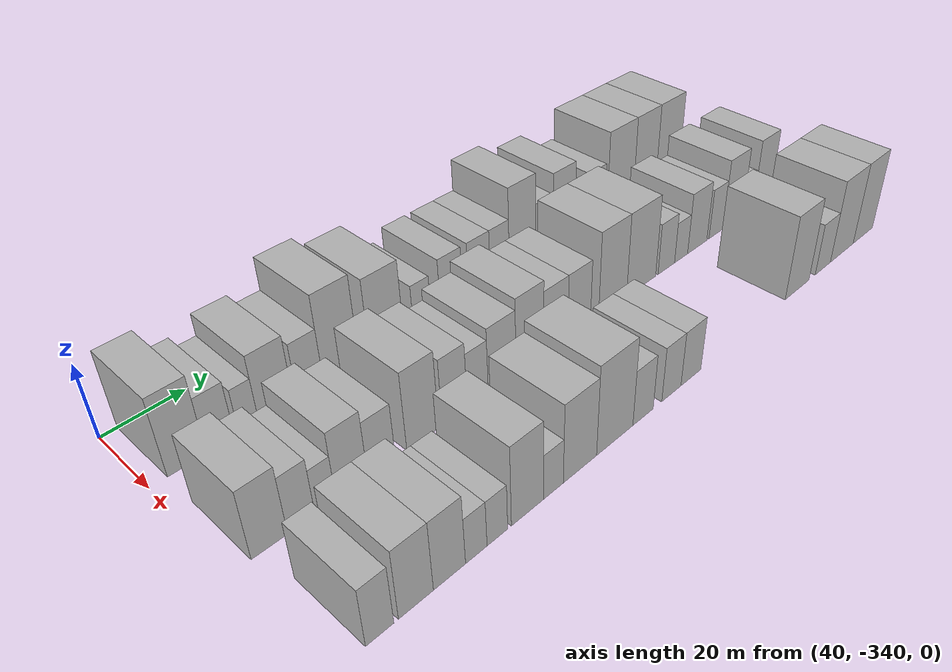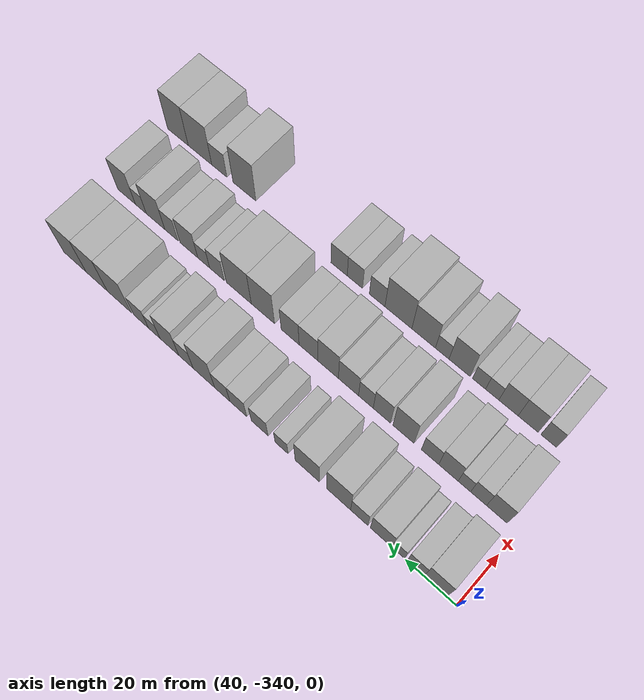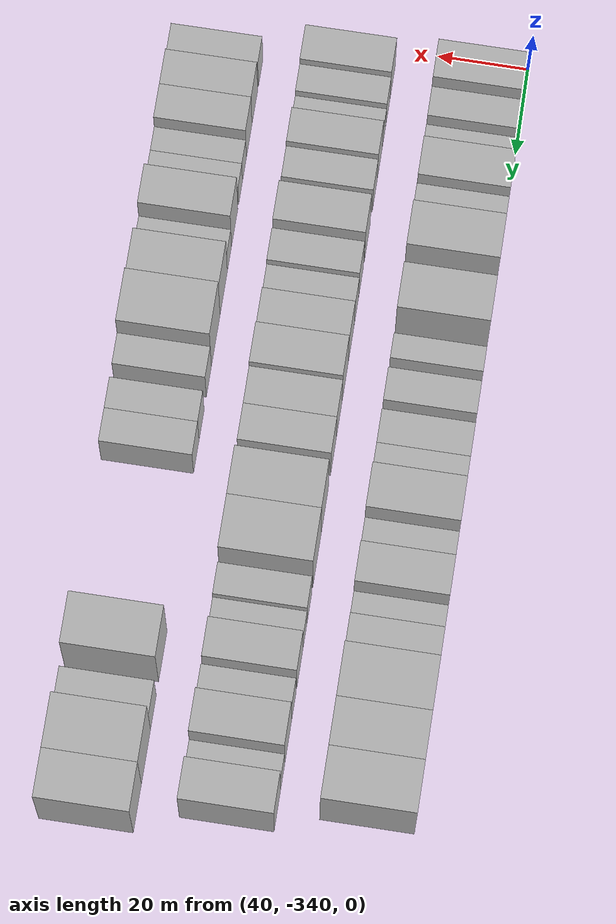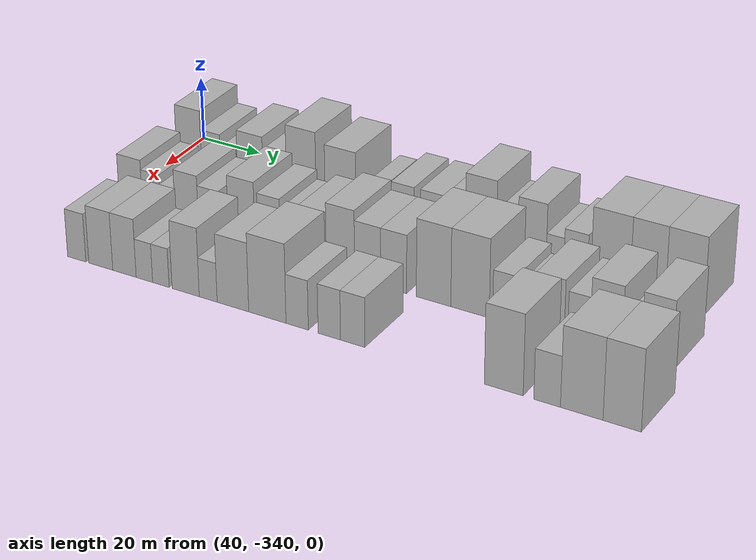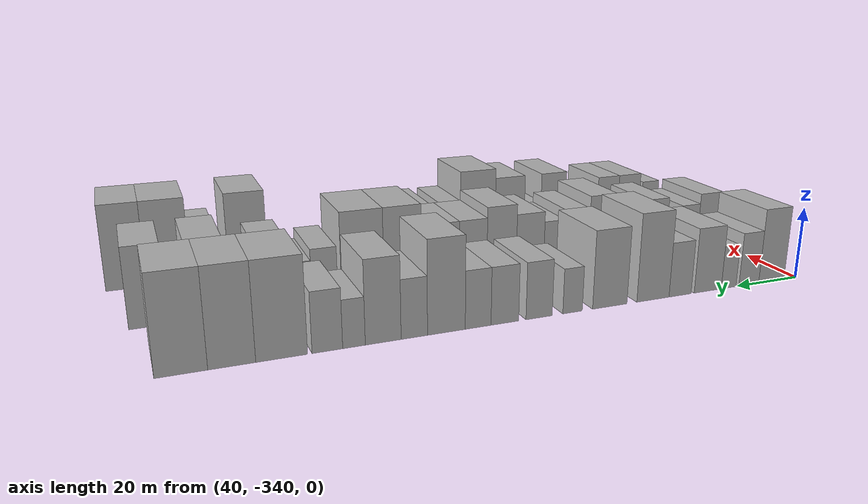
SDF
<sdf version="1.6">
 <world name="default">
  <model name="building_1">
   <static>1</static>
   <pose>50.0000 -331.6400 0 0.000000 0.000000 0.000000</pose>
   <link name="link">
    <pose>0 0 10.50 0 0 0</pose>
    <collision name="collision"><geometry><box><size>20.0000 8.7200 21.0000</size></box></geometry></collision>
    <visual name="visual">
     <cast_shadows>0</cast_shadows>
     <geometry><box><size>20.0000 8.7200 21.0000</size></box></geometry>
     <material>
      <script>
       <uri>model://HANNAS_wall/materials/scripts</uri>
       <uri>model://HANNAS_wall/materials/textures</uri>
       <name>vrc/HANNAS_wall</name>
      </script>
     </material>
    </visual>
   </link>
  </model>
  <model name="building_2">
   <static>1</static>
   <pose>50.0000 -323.9423 0 0.000000 0.000000 0.000000</pose>
   <link name="link">
    <pose>0 0 7.50 0 0 0</pose>
    <collision name="collision"><geometry><box><size>20.0000 6.6754 15.0000</size></box></geometry></collision>
    <visual name="visual">
     <cast_shadows>0</cast_shadows>
     <geometry><box><size>20.0000 6.6754 15.0000</size></box></geometry>
     <material>
      <script>
       <uri>model://HANNAS_wall/materials/scripts</uri>
       <uri>model://HANNAS_wall/materials/textures</uri>
       <name>vrc/HANNAS_wall</name>
      </script>
     </material>
    </visual>
   </link>
  </model>
  <model name="building_3">
   <static>1</static>
   <pose>50.0000 -317.1755 0 0.000000 0.000000 0.000000</pose>
   <link name="link">
    <pose>0 0 6.00 0 0 0</pose>
    <collision name="collision"><geometry><box><size>20.0000 4.8581 12.0000</size></box></geometry></collision>
    <visual name="visual">
     <cast_shadows>0</cast_shadows>
     <geometry><box><size>20.0000 4.8581 12.0000</size></box></geometry>
     <material>
      <script>
       <uri>model://HANNAS_wall/materials/scripts</uri>
       <uri>model://HANNAS_wall/materials/textures</uri>
       <name>vrc/HANNAS_wall</name>
      </script>
     </material>
    </visual>
   </link>
  </model>
  <model name="building_4">
   <static>1</static>
   <pose>50.0000 -310.3629 0 0.000000 0.000000 0.000000</pose>
   <link name="link">
    <pose>0 0 9.00 0 0 0</pose>
    <collision name="collision"><geometry><box><size>20.0000 8.7672 18.0000</size></box></geometry></collision>
    <visual name="visual">
     <cast_shadows>0</cast_shadows>
     <geometry><box><size>20.0000 8.7672 18.0000</size></box></geometry>
     <material>
      <script>
       <uri>model://HANNAS_wall/materials/scripts</uri>
       <uri>model://HANNAS_wall/materials/textures</uri>
       <name>vrc/HANNAS_wall</name>
      </script>
     </material>
    </visual>
   </link>
  </model>
  <model name="building_5">
   <static>1</static>
   <pose>50.0000 -301.4935 0 0.000000 0.000000 0.000000</pose>
   <link name="link">
    <pose>0 0 7.50 0 0 0</pose>
    <collision name="collision"><geometry><box><size>20.0000 6.9716 15.0000</size></box></geometry></collision>
    <visual name="visual">
     <cast_shadows>0</cast_shadows>
     <geometry><box><size>20.0000 6.9716 15.0000</size></box></geometry>
     <material>
      <script>
       <uri>model://HANNAS_wall/materials/scripts</uri>
       <uri>model://HANNAS_wall/materials/textures</uri>
       <name>vrc/HANNAS_wall</name>
      </script>
     </material>
    </visual>
   </link>
  </model>
  <model name="building_6">
   <static>1</static>
   <pose>50.0000 -293.0491 0 0.000000 0.000000 0.000000</pose>
   <link name="link">
    <pose>0 0 12.00 0 0 0</pose>
    <collision name="collision"><geometry><box><size>20.0000 9.9170 24.0000</size></box></geometry></collision>
    <visual name="visual">
     <cast_shadows>0</cast_shadows>
     <geometry><box><size>20.0000 9.9170 24.0000</size></box></geometry>
     <material>
      <script>
       <uri>model://HANNAS_wall/materials/scripts</uri>
       <uri>model://HANNAS_wall/materials/textures</uri>
       <name>vrc/HANNAS_wall</name>
      </script>
     </material>
    </visual>
   </link>
  </model>
  <model name="building_7">
   <static>1</static>
   <pose>50.0000 -280.0020 0 0.000000 0.000000 0.000000</pose>
   <link name="link">
    <pose>0 0 10.50 0 0 0</pose>
    <collision name="collision"><geometry><box><size>20.0000 10.1773 21.0000</size></box></geometry></collision>
    <visual name="visual">
     <cast_shadows>0</cast_shadows>
     <geometry><box><size>20.0000 10.1773 21.0000</size></box></geometry>
     <material>
      <script>
       <uri>model://HANNAS_wall/materials/scripts</uri>
       <uri>model://HANNAS_wall/materials/textures</uri>
       <name>vrc/HANNAS_wall</name>
      </script>
     </material>
    </visual>
   </link>
  </model>
  <model name="building_8">
   <static>1</static>
   <pose>50.0000 -269.1246 0 0.000000 0.000000 0.000000</pose>
   <link name="link">
    <pose>0 0 6.00 0 0 0</pose>
    <collision name="collision"><geometry><box><size>20.0000 5.5774 12.0000</size></box></geometry></collision>
    <visual name="visual">
     <cast_shadows>0</cast_shadows>
     <geometry><box><size>20.0000 5.5774 12.0000</size></box></geometry>
     <material>
      <script>
       <uri>model://HANNAS_wall/materials/scripts</uri>
       <uri>model://HANNAS_wall/materials/textures</uri>
       <name>vrc/HANNAS_wall</name>
      </script>
     </material>
    </visual>
   </link>
  </model>
  <model name="building_9">
   <static>1</static>
   <pose>50.0000 -259.6852 0 0.000000 0.000000 0.000000</pose>
   <link name="link">
    <pose>0 0 7.50 0 0 0</pose>
    <collision name="collision"><geometry><box><size>20.0000 7.3014 15.0000</size></box></geometry></collision>
    <visual name="visual">
     <cast_shadows>0</cast_shadows>
     <geometry><box><size>20.0000 7.3014 15.0000</size></box></geometry>
     <material>
      <script>
       <uri>model://HANNAS_wall/materials/scripts</uri>
       <uri>model://HANNAS_wall/materials/textures</uri>
       <name>vrc/HANNAS_wall</name>
      </script>
     </material>
    </visual>
   </link>
  </model>
  <model name="building_10">
   <static>1</static>
   <pose>50.0000 -250.3015 0 0.000000 0.000000 0.000000</pose>
   <link name="link">
    <pose>0 0 7.50 0 0 0</pose>
    <collision name="collision"><geometry><box><size>20.0000 7.4660 15.0000</size></box></geometry></collision>
    <visual name="visual">
     <cast_shadows>0</cast_shadows>
     <geometry><box><size>20.0000 7.4660 15.0000</size></box></geometry>
     <material>
      <script>
       <uri>model://HANNAS_wall/materials/scripts</uri>
       <uri>model://HANNAS_wall/materials/textures</uri>
       <name>vrc/HANNAS_wall</name>
      </script>
     </material>
    </visual>
   </link>
  </model>
  <model name="building_11">
   <static>1</static>
   <pose>50.0000 -243.1698 0 0.000000 0.000000 0.000000</pose>
   <link name="link">
    <pose>0 0 7.50 0 0 0</pose>
    <collision name="collision"><geometry><box><size>20.0000 6.7973 15.0000</size></box></geometry></collision>
    <visual name="visual">
     <cast_shadows>0</cast_shadows>
     <geometry><box><size>20.0000 6.7973 15.0000</size></box></geometry>
     <material>
      <script>
       <uri>model://HANNAS_wall/materials/scripts</uri>
       <uri>model://HANNAS_wall/materials/textures</uri>
       <name>vrc/HANNAS_wall</name>
      </script>
     </material>
    </visual>
   </link>
  </model>
  <model name="building_12">
   <static>1</static>
   <pose>50.0000 -234.9150 0 0.000000 0.000000 0.000000</pose>
   <link name="link">
    <pose>0 0 12.00 0 0 0</pose>
    <collision name="collision"><geometry><box><size>20.0000 9.7123 24.0000</size></box></geometry></collision>
    <visual name="visual">
     <cast_shadows>0</cast_shadows>
     <geometry><box><size>20.0000 9.7123 24.0000</size></box></geometry>
     <material>
      <script>
       <uri>model://HANNAS_wall/materials/scripts</uri>
       <uri>model://HANNAS_wall/materials/textures</uri>
       <name>vrc/HANNAS_wall</name>
      </script>
     </material>
    </visual>
   </link>
  </model>
  <model name="building_13">
   <static>1</static>
   <pose>50.0000 -226.7596 0 0.000000 0.000000 0.000000</pose>
   <link name="link">
    <pose>0 0 7.50 0 0 0</pose>
    <collision name="collision"><geometry><box><size>20.0000 6.5986 15.0000</size></box></geometry></collision>
    <visual name="visual">
     <cast_shadows>0</cast_shadows>
     <geometry><box><size>20.0000 6.5986 15.0000</size></box></geometry>
     <material>
      <script>
       <uri>model://HANNAS_wall/materials/scripts</uri>
       <uri>model://HANNAS_wall/materials/textures</uri>
       <name>vrc/HANNAS_wall</name>
      </script>
     </material>
    </visual>
   </link>
  </model>
  <model name="building_14">
   <static>1</static>
   <pose>50.0000 -219.0943 0 0.000000 0.000000 0.000000</pose>
   <link name="link">
    <pose>0 0 10.50 0 0 0</pose>
    <collision name="collision"><geometry><box><size>20.0000 8.7320 21.0000</size></box></geometry></collision>
    <visual name="visual">
     <cast_shadows>0</cast_shadows>
     <geometry><box><size>20.0000 8.7320 21.0000</size></box></geometry>
     <material>
      <script>
       <uri>model://HANNAS_wall/materials/scripts</uri>
       <uri>model://HANNAS_wall/materials/textures</uri>
       <name>vrc/HANNAS_wall</name>
      </script>
     </material>
    </visual>
   </link>
  </model>
  <model name="building_15">
   <static>1</static>
   <pose>50.0000 -212.0358 0 0.000000 0.000000 0.000000</pose>
   <link name="link">
    <pose>0 0 6.00 0 0 0</pose>
    <collision name="collision"><geometry><box><size>20.0000 5.3851 12.0000</size></box></geometry></collision>
    <visual name="visual">
     <cast_shadows>0</cast_shadows>
     <geometry><box><size>20.0000 5.3851 12.0000</size></box></geometry>
     <material>
      <script>
       <uri>model://HANNAS_wall/materials/scripts</uri>
       <uri>model://HANNAS_wall/materials/textures</uri>
       <name>vrc/HANNAS_wall</name>
      </script>
     </material>
    </visual>
   </link>
  </model>
  <model name="building_16">
   <static>1</static>
   <pose>50.0000 -205.7659 0 0.000000 0.000000 0.000000</pose>
   <link name="link">
    <pose>0 0 7.50 0 0 0</pose>
    <collision name="collision"><geometry><box><size>20.0000 7.1548 15.0000</size></box></geometry></collision>
    <visual name="visual">
     <cast_shadows>0</cast_shadows>
     <geometry><box><size>20.0000 7.1548 15.0000</size></box></geometry>
     <material>
      <script>
       <uri>model://HANNAS_wall/materials/scripts</uri>
       <uri>model://HANNAS_wall/materials/textures</uri>
       <name>vrc/HANNAS_wall</name>
      </script>
     </material>
    </visual>
   </link>
  </model>
  <model name="building_17">
   <static>1</static>
   <pose>50.0000 -195.3583 0 0.000000 0.000000 0.000000</pose>
   <link name="link">
    <pose>0 0 12.00 0 0 0</pose>
    <collision name="collision"><geometry><box><size>20.0000 11.6603 24.0000</size></box></geometry></collision>
    <visual name="visual">
     <cast_shadows>0</cast_shadows>
     <geometry><box><size>20.0000 11.6603 24.0000</size></box></geometry>
     <material>
      <script>
       <uri>model://HANNAS_wall/materials/scripts</uri>
       <uri>model://HANNAS_wall/materials/textures</uri>
       <name>vrc/HANNAS_wall</name>
      </script>
     </material>
    </visual>
   </link>
  </model>
  <model name="building_18">
   <static>1</static>
   <pose>50.0000 -184.3350 0 0.000000 0.000000 0.000000</pose>
   <link name="link">
    <pose>0 0 12.00 0 0 0</pose>
    <collision name="collision"><geometry><box><size>20.0000 10.3863 24.0000</size></box></geometry></collision>
    <visual name="visual">
     <cast_shadows>0</cast_shadows>
     <geometry><box><size>20.0000 10.3863 24.0000</size></box></geometry>
     <material>
      <script>
       <uri>model://HANNAS_wall/materials/scripts</uri>
       <uri>model://HANNAS_wall/materials/textures</uri>
       <name>vrc/HANNAS_wall</name>
      </script>
     </material>
    </visual>
   </link>
  </model>
  <model name="building_19">
   <static>1</static>
   <pose>50.0000 -173.5306 0 0.000000 0.000000 0.000000</pose>
   <link name="link">
    <pose>0 0 12.00 0 0 0</pose>
    <collision name="collision"><geometry><box><size>20.0000 11.2227 24.0000</size></box></geometry></collision>
    <visual name="visual">
     <cast_shadows>0</cast_shadows>
     <geometry><box><size>20.0000 11.2227 24.0000</size></box></geometry>
     <material>
      <script>
       <uri>model://HANNAS_wall/materials/scripts</uri>
       <uri>model://HANNAS_wall/materials/textures</uri>
       <name>vrc/HANNAS_wall</name>
      </script>
     </material>
    </visual>
   </link>
  </model>
  <model name="building_71">
   <static>1</static>
   <pose>79.0000 -332.0076 0 0.000000 0.000000 0.000000</pose>
   <link name="link">
    <pose>0 0 9.00 0 0 0</pose>
    <collision name="collision"><geometry><box><size>20.0000 7.9848 18.0000</size></box></geometry></collision>
    <visual name="visual">
     <cast_shadows>0</cast_shadows>
     <geometry><box><size>20.0000 7.9848 18.0000</size></box></geometry>
     <material>
      <script>
       <uri>model://HANNAS_wall/materials/scripts</uri>
       <uri>model://HANNAS_wall/materials/textures</uri>
       <name>vrc/HANNAS_wall</name>
      </script>
     </material>
    </visual>
   </link>
  </model>
  <model name="building_72">
   <static>1</static>
   <pose>79.0000 -324.8877 0 0.000000 0.000000 0.000000</pose>
   <link name="link">
    <pose>0 0 7.50 0 0 0</pose>
    <collision name="collision"><geometry><box><size>20.0000 6.2548 15.0000</size></box></geometry></collision>
    <visual name="visual">
     <cast_shadows>0</cast_shadows>
     <geometry><box><size>20.0000 6.2548 15.0000</size></box></geometry>
     <material>
      <script>
       <uri>model://HANNAS_wall/materials/scripts</uri>
       <uri>model://HANNAS_wall/materials/textures</uri>
       <name>vrc/HANNAS_wall</name>
      </script>
     </material>
    </visual>
   </link>
  </model>
  <model name="building_73">
   <static>1</static>
   <pose>79.0000 -319.2826 0 0.000000 0.000000 0.000000</pose>
   <link name="link">
    <pose>0 0 6.00 0 0 0</pose>
    <collision name="collision"><geometry><box><size>20.0000 4.9555 12.0000</size></box></geometry></collision>
    <visual name="visual">
     <cast_shadows>0</cast_shadows>
     <geometry><box><size>20.0000 4.9555 12.0000</size></box></geometry>
     <material>
      <script>
       <uri>model://HANNAS_wall/materials/scripts</uri>
       <uri>model://HANNAS_wall/materials/textures</uri>
       <name>vrc/HANNAS_wall</name>
      </script>
     </material>
    </visual>
   </link>
  </model>
  <model name="building_74">
   <static>1</static>
   <pose>79.0000 -312.9037 0 0.000000 0.000000 0.000000</pose>
   <link name="link">
    <pose>0 0 9.00 0 0 0</pose>
    <collision name="collision"><geometry><box><size>20.0000 7.8023 18.0000</size></box></geometry></collision>
    <visual name="visual">
     <cast_shadows>0</cast_shadows>
     <geometry><box><size>20.0000 7.8023 18.0000</size></box></geometry>
     <material>
      <script>
       <uri>model://HANNAS_wall/materials/scripts</uri>
       <uri>model://HANNAS_wall/materials/textures</uri>
       <name>vrc/HANNAS_wall</name>
      </script>
     </material>
    </visual>
   </link>
  </model>
  <model name="building_75">
   <static>1</static>
   <pose>79.0000 -305.4761 0 0.000000 0.000000 0.000000</pose>
   <link name="link">
    <pose>0 0 7.50 0 0 0</pose>
    <collision name="collision"><geometry><box><size>20.0000 7.0528 15.0000</size></box></geometry></collision>
    <visual name="visual">
     <cast_shadows>0</cast_shadows>
     <geometry><box><size>20.0000 7.0528 15.0000</size></box></geometry>
     <material>
      <script>
       <uri>model://HANNAS_wall/materials/scripts</uri>
       <uri>model://HANNAS_wall/materials/textures</uri>
       <name>vrc/HANNAS_wall</name>
      </script>
     </material>
    </visual>
   </link>
  </model>
  <model name="building_76">
   <static>1</static>
   <pose>79.0000 -294.5811 0 0.000000 0.000000 0.000000</pose>
   <link name="link">
    <pose>0 0 10.50 0 0 0</pose>
    <collision name="collision"><geometry><box><size>20.0000 8.7373 21.0000</size></box></geometry></collision>
    <visual name="visual">
     <cast_shadows>0</cast_shadows>
     <geometry><box><size>20.0000 8.7373 21.0000</size></box></geometry>
     <material>
      <script>
       <uri>model://HANNAS_wall/materials/scripts</uri>
       <uri>model://HANNAS_wall/materials/textures</uri>
       <name>vrc/HANNAS_wall</name>
      </script>
     </material>
    </visual>
   </link>
  </model>
  <model name="building_77">
   <static>1</static>
   <pose>79.0000 -285.6031 0 0.000000 0.000000 0.000000</pose>
   <link name="link">
    <pose>0 0 9.00 0 0 0</pose>
    <collision name="collision"><geometry><box><size>20.0000 7.2186 18.0000</size></box></geometry></collision>
    <visual name="visual">
     <cast_shadows>0</cast_shadows>
     <geometry><box><size>20.0000 7.2186 18.0000</size></box></geometry>
     <material>
      <script>
       <uri>model://HANNAS_wall/materials/scripts</uri>
       <uri>model://HANNAS_wall/materials/textures</uri>
       <name>vrc/HANNAS_wall</name>
      </script>
     </material>
    </visual>
   </link>
  </model>
  <model name="building_78">
   <static>1</static>
   <pose>79.0000 -278.8722 0 0.000000 0.000000 0.000000</pose>
   <link name="link">
    <pose>0 0 7.50 0 0 0</pose>
    <collision name="collision"><geometry><box><size>20.0000 6.2432 15.0000</size></box></geometry></collision>
    <visual name="visual">
     <cast_shadows>0</cast_shadows>
     <geometry><box><size>20.0000 6.2432 15.0000</size></box></geometry>
     <material>
      <script>
       <uri>model://HANNAS_wall/materials/scripts</uri>
       <uri>model://HANNAS_wall/materials/textures</uri>
       <name>vrc/HANNAS_wall</name>
      </script>
     </material>
    </visual>
   </link>
  </model>
  <model name="building_79">
   <static>1</static>
   <pose>79.0000 -271.4393 0 0.000000 0.000000 0.000000</pose>
   <link name="link">
    <pose>0 0 9.00 0 0 0</pose>
    <collision name="collision"><geometry><box><size>20.0000 8.6226 18.0000</size></box></geometry></collision>
    <visual name="visual">
     <cast_shadows>0</cast_shadows>
     <geometry><box><size>20.0000 8.6226 18.0000</size></box></geometry>
     <material>
      <script>
       <uri>model://HANNAS_wall/materials/scripts</uri>
       <uri>model://HANNAS_wall/materials/textures</uri>
       <name>vrc/HANNAS_wall</name>
      </script>
     </material>
    </visual>
   </link>
  </model>
  <model name="building_80">
   <static>1</static>
   <pose>79.0000 -262.6434 0 0.000000 0.000000 0.000000</pose>
   <link name="link">
    <pose>0 0 10.50 0 0 0</pose>
    <collision name="collision"><geometry><box><size>20.0000 8.9692 21.0000</size></box></geometry></collision>
    <visual name="visual">
     <cast_shadows>0</cast_shadows>
     <geometry><box><size>20.0000 8.9692 21.0000</size></box></geometry>
     <material>
      <script>
       <uri>model://HANNAS_wall/materials/scripts</uri>
       <uri>model://HANNAS_wall/materials/textures</uri>
       <name>vrc/HANNAS_wall</name>
      </script>
     </material>
    </visual>
   </link>
  </model>
  <model name="building_81">
   <static>1</static>
   <pose>79.0000 -254.0477 0 0.000000 0.000000 0.000000</pose>
   <link name="link">
    <pose>0 0 9.00 0 0 0</pose>
    <collision name="collision"><geometry><box><size>20.0000 8.2222 18.0000</size></box></geometry></collision>
    <visual name="visual">
     <cast_shadows>0</cast_shadows>
     <geometry><box><size>20.0000 8.2222 18.0000</size></box></geometry>
     <material>
      <script>
       <uri>model://HANNAS_wall/materials/scripts</uri>
       <uri>model://HANNAS_wall/materials/textures</uri>
       <name>vrc/HANNAS_wall</name>
      </script>
     </material>
    </visual>
   </link>
  </model>
  <model name="building_82">
   <static>1</static>
   <pose>79.0000 -245.9224 0 0.000000 0.000000 0.000000</pose>
   <link name="link">
    <pose>0 0 9.00 0 0 0</pose>
    <collision name="collision"><geometry><box><size>20.0000 8.0285 18.0000</size></box></geometry></collision>
    <visual name="visual">
     <cast_shadows>0</cast_shadows>
     <geometry><box><size>20.0000 8.0285 18.0000</size></box></geometry>
     <material>
      <script>
       <uri>model://HANNAS_wall/materials/scripts</uri>
       <uri>model://HANNAS_wall/materials/textures</uri>
       <name>vrc/HANNAS_wall</name>
      </script>
     </material>
    </visual>
   </link>
  </model>
  <model name="building_83">
   <static>1</static>
   <pose>79.0000 -233.6316 0 0.000000 0.000000 0.000000</pose>
   <link name="link">
    <pose>0 0 12.00 0 0 0</pose>
    <collision name="collision"><geometry><box><size>20.0000 10.5530 24.0000</size></box></geometry></collision>
    <visual name="visual">
     <cast_shadows>0</cast_shadows>
     <geometry><box><size>20.0000 10.5530 24.0000</size></box></geometry>
     <material>
      <script>
       <uri>model://HANNAS_wall/materials/scripts</uri>
       <uri>model://HANNAS_wall/materials/textures</uri>
       <name>vrc/HANNAS_wall</name>
      </script>
     </material>
    </visual>
   </link>
  </model>
  <model name="building_84">
   <static>1</static>
   <pose>79.0000 -222.5740 0 0.000000 0.000000 0.000000</pose>
   <link name="link">
    <pose>0 0 12.00 0 0 0</pose>
    <collision name="collision"><geometry><box><size>20.0000 11.5623 24.0000</size></box></geometry></collision>
    <visual name="visual">
     <cast_shadows>0</cast_shadows>
     <geometry><box><size>20.0000 11.5623 24.0000</size></box></geometry>
     <material>
      <script>
       <uri>model://HANNAS_wall/materials/scripts</uri>
       <uri>model://HANNAS_wall/materials/textures</uri>
       <name>vrc/HANNAS_wall</name>
      </script>
     </material>
    </visual>
   </link>
  </model>
  <model name="building_85">
   <static>1</static>
   <pose>79.0000 -212.3437 0 0.000000 0.000000 0.000000</pose>
   <link name="link">
    <pose>0 0 7.50 0 0 0</pose>
    <collision name="collision"><geometry><box><size>20.0000 6.8983 15.0000</size></box></geometry></collision>
    <visual name="visual">
     <cast_shadows>0</cast_shadows>
     <geometry><box><size>20.0000 6.8983 15.0000</size></box></geometry>
     <material>
      <script>
       <uri>model://HANNAS_wall/materials/scripts</uri>
       <uri>model://HANNAS_wall/materials/textures</uri>
       <name>vrc/HANNAS_wall</name>
      </script>
     </material>
    </visual>
   </link>
  </model>
  <model name="building_86">
   <static>1</static>
   <pose>79.0000 -206.0917 0 0.000000 0.000000 0.000000</pose>
   <link name="link">
    <pose>0 0 6.00 0 0 0</pose>
    <collision name="collision"><geometry><box><size>20.0000 5.6056 12.0000</size></box></geometry></collision>
    <visual name="visual">
     <cast_shadows>0</cast_shadows>
     <geometry><box><size>20.0000 5.6056 12.0000</size></box></geometry>
     <material>
      <script>
       <uri>model://HANNAS_wall/materials/scripts</uri>
       <uri>model://HANNAS_wall/materials/textures</uri>
       <name>vrc/HANNAS_wall</name>
      </script>
     </material>
    </visual>
   </link>
  </model>
  <model name="building_87">
   <static>1</static>
   <pose>79.0000 -199.0315 0 0.000000 0.000000 0.000000</pose>
   <link name="link">
    <pose>0 0 9.00 0 0 0</pose>
    <collision name="collision"><geometry><box><size>20.0000 8.5148 18.0000</size></box></geometry></collision>
    <visual name="visual">
     <cast_shadows>0</cast_shadows>
     <geometry><box><size>20.0000 8.5148 18.0000</size></box></geometry>
     <material>
      <script>
       <uri>model://HANNAS_wall/materials/scripts</uri>
       <uri>model://HANNAS_wall/materials/textures</uri>
       <name>vrc/HANNAS_wall</name>
      </script>
     </material>
    </visual>
   </link>
  </model>
  <model name="building_88">
   <static>1</static>
   <pose>79.0000 -190.5724 0 0.000000 0.000000 0.000000</pose>
   <link name="link">
    <pose>0 0 7.50 0 0 0</pose>
    <collision name="collision"><geometry><box><size>20.0000 6.4034 15.0000</size></box></geometry></collision>
    <visual name="visual">
     <cast_shadows>0</cast_shadows>
     <geometry><box><size>20.0000 6.4034 15.0000</size></box></geometry>
     <material>
      <script>
       <uri>model://HANNAS_wall/materials/scripts</uri>
       <uri>model://HANNAS_wall/materials/textures</uri>
       <name>vrc/HANNAS_wall</name>
      </script>
     </material>
    </visual>
   </link>
  </model>
  <model name="building_89">
   <static>1</static>
   <pose>79.0000 -182.7771 0 0.000000 0.000000 0.000000</pose>
   <link name="link">
    <pose>0 0 10.50 0 0 0</pose>
    <collision name="collision"><geometry><box><size>20.0000 9.1872 21.0000</size></box></geometry></collision>
    <visual name="visual">
     <cast_shadows>0</cast_shadows>
     <geometry><box><size>20.0000 9.1872 21.0000</size></box></geometry>
     <material>
      <script>
       <uri>model://HANNAS_wall/materials/scripts</uri>
       <uri>model://HANNAS_wall/materials/textures</uri>
       <name>vrc/HANNAS_wall</name>
      </script>
     </material>
    </visual>
   </link>
  </model>
  <model name="building_90">
   <static>1</static>
   <pose>79.0000 -175.4888 0 0.000000 0.000000 0.000000</pose>
   <link name="link">
    <pose>0 0 6.00 0 0 0</pose>
    <collision name="collision"><geometry><box><size>20.0000 5.3892 12.0000</size></box></geometry></collision>
    <visual name="visual">
     <cast_shadows>0</cast_shadows>
     <geometry><box><size>20.0000 5.3892 12.0000</size></box></geometry>
     <material>
      <script>
       <uri>model://HANNAS_wall/materials/scripts</uri>
       <uri>model://HANNAS_wall/materials/textures</uri>
       <name>vrc/HANNAS_wall</name>
      </script>
     </material>
    </visual>
   </link>
  </model>
  <model name="building_91">
   <static>1</static>
   <pose>79.0000 -168.3481 0 0.000000 0.000000 0.000000</pose>
   <link name="link">
    <pose>0 0 10.50 0 0 0</pose>
    <collision name="collision"><geometry><box><size>20.0000 8.8922 21.0000</size></box></geometry></collision>
    <visual name="visual">
     <cast_shadows>0</cast_shadows>
     <geometry><box><size>20.0000 8.8922 21.0000</size></box></geometry>
     <material>
      <script>
       <uri>model://HANNAS_wall/materials/scripts</uri>
       <uri>model://HANNAS_wall/materials/textures</uri>
       <name>vrc/HANNAS_wall</name>
      </script>
     </material>
    </visual>
   </link>
  </model>
  <model name="building_151">
   <static>1</static>
   <pose>108.0000 -329.9116 0 0.000000 0.000000 0.000000</pose>
   <link name="link">
    <pose>0 0 7.50 0 0 0</pose>
    <collision name="collision"><geometry><box><size>20.0000 6.1767 15.0000</size></box></geometry></collision>
    <visual name="visual">
     <cast_shadows>0</cast_shadows>
     <geometry><box><size>20.0000 6.1767 15.0000</size></box></geometry>
     <material>
      <script>
       <uri>model://HANNAS_wall/materials/scripts</uri>
       <uri>model://HANNAS_wall/materials/textures</uri>
       <name>vrc/HANNAS_wall</name>
      </script>
     </material>
    </visual>
   </link>
  </model>
  <model name="building_152">
   <static>1</static>
   <pose>108.0000 -321.8058 0 0.000000 0.000000 0.000000</pose>
   <link name="link">
    <pose>0 0 9.00 0 0 0</pose>
    <collision name="collision"><geometry><box><size>20.0000 8.0349 18.0000</size></box></geometry></collision>
    <visual name="visual">
     <cast_shadows>0</cast_shadows>
     <geometry><box><size>20.0000 8.0349 18.0000</size></box></geometry>
     <material>
      <script>
       <uri>model://HANNAS_wall/materials/scripts</uri>
       <uri>model://HANNAS_wall/materials/textures</uri>
       <name>vrc/HANNAS_wall</name>
      </script>
     </material>
    </visual>
   </link>
  </model>
  <model name="building_153">
   <static>1</static>
   <pose>108.0000 -313.9029 0 0.000000 0.000000 0.000000</pose>
   <link name="link">
    <pose>0 0 9.00 0 0 0</pose>
    <collision name="collision"><geometry><box><size>20.0000 7.7710 18.0000</size></box></geometry></collision>
    <visual name="visual">
     <cast_shadows>0</cast_shadows>
     <geometry><box><size>20.0000 7.7710 18.0000</size></box></geometry>
     <material>
      <script>
       <uri>model://HANNAS_wall/materials/scripts</uri>
       <uri>model://HANNAS_wall/materials/textures</uri>
       <name>vrc/HANNAS_wall</name>
      </script>
     </material>
    </visual>
   </link>
  </model>
  <model name="building_154">
   <static>1</static>
   <pose>108.0000 -307.3051 0 0.000000 0.000000 0.000000</pose>
   <link name="link">
    <pose>0 0 6.00 0 0 0</pose>
    <collision name="collision"><geometry><box><size>20.0000 5.4244 12.0000</size></box></geometry></collision>
    <visual name="visual">
     <cast_shadows>0</cast_shadows>
     <geometry><box><size>20.0000 5.4244 12.0000</size></box></geometry>
     <material>
      <script>
       <uri>model://HANNAS_wall/materials/scripts</uri>
       <uri>model://HANNAS_wall/materials/textures</uri>
       <name>vrc/HANNAS_wall</name>
      </script>
     </material>
    </visual>
   </link>
  </model>
  <model name="building_155">
   <static>1</static>
   <pose>108.0000 -301.9004 0 0.000000 0.000000 0.000000</pose>
   <link name="link">
    <pose>0 0 6.00 0 0 0</pose>
    <collision name="collision"><geometry><box><size>20.0000 5.3851 12.0000</size></box></geometry></collision>
    <visual name="visual">
     <cast_shadows>0</cast_shadows>
     <geometry><box><size>20.0000 5.3851 12.0000</size></box></geometry>
     <material>
      <script>
       <uri>model://HANNAS_wall/materials/scripts</uri>
       <uri>model://HANNAS_wall/materials/textures</uri>
       <name>vrc/HANNAS_wall</name>
      </script>
     </material>
    </visual>
   </link>
  </model>
  <model name="building_156">
   <static>1</static>
   <pose>108.0000 -293.8176 0 0.000000 0.000000 0.000000</pose>
   <link name="link">
    <pose>0 0 10.50 0 0 0</pose>
    <collision name="collision"><geometry><box><size>20.0000 8.7806 21.0000</size></box></geometry></collision>
    <visual name="visual">
     <cast_shadows>0</cast_shadows>
     <geometry><box><size>20.0000 8.7806 21.0000</size></box></geometry>
     <material>
      <script>
       <uri>model://HANNAS_wall/materials/scripts</uri>
       <uri>model://HANNAS_wall/materials/textures</uri>
       <name>vrc/HANNAS_wall</name>
      </script>
     </material>
    </visual>
   </link>
  </model>
  <model name="building_157">
   <static>1</static>
   <pose>108.0000 -286.5518 0 0.000000 0.000000 0.000000</pose>
   <link name="link">
    <pose>0 0 6.00 0 0 0</pose>
    <collision name="collision"><geometry><box><size>20.0000 5.7510 12.0000</size></box></geometry></collision>
    <visual name="visual">
     <cast_shadows>0</cast_shadows>
     <geometry><box><size>20.0000 5.7510 12.0000</size></box></geometry>
     <material>
      <script>
       <uri>model://HANNAS_wall/materials/scripts</uri>
       <uri>model://HANNAS_wall/materials/textures</uri>
       <name>vrc/HANNAS_wall</name>
      </script>
     </material>
    </visual>
   </link>
  </model>
  <model name="building_158">
   <static>1</static>
   <pose>108.0000 -278.6593 0 0.000000 0.000000 0.000000</pose>
   <link name="link">
    <pose>0 0 10.50 0 0 0</pose>
    <collision name="collision"><geometry><box><size>20.0000 10.0339 21.0000</size></box></geometry></collision>
    <visual name="visual">
     <cast_shadows>0</cast_shadows>
     <geometry><box><size>20.0000 10.0339 21.0000</size></box></geometry>
     <material>
      <script>
       <uri>model://HANNAS_wall/materials/scripts</uri>
       <uri>model://HANNAS_wall/materials/textures</uri>
       <name>vrc/HANNAS_wall</name>
      </script>
     </material>
    </visual>
   </link>
  </model>
  <model name="building_159">
   <static>1</static>
   <pose>108.0000 -267.8089 0 0.000000 0.000000 0.000000</pose>
   <link name="link">
    <pose>0 0 12.00 0 0 0</pose>
    <collision name="collision"><geometry><box><size>20.0000 11.6669 24.0000</size></box></geometry></collision>
    <visual name="visual">
     <cast_shadows>0</cast_shadows>
     <geometry><box><size>20.0000 11.6669 24.0000</size></box></geometry>
     <material>
      <script>
       <uri>model://HANNAS_wall/materials/scripts</uri>
       <uri>model://HANNAS_wall/materials/textures</uri>
       <name>vrc/HANNAS_wall</name>
      </script>
     </material>
    </visual>
   </link>
  </model>
  <model name="building_160">
   <static>1</static>
   <pose>108.0000 -258.5346 0 0.000000 0.000000 0.000000</pose>
   <link name="link">
    <pose>0 0 7.50 0 0 0</pose>
    <collision name="collision"><geometry><box><size>20.0000 6.8817 15.0000</size></box></geometry></collision>
    <visual name="visual">
     <cast_shadows>0</cast_shadows>
     <geometry><box><size>20.0000 6.8817 15.0000</size></box></geometry>
     <material>
      <script>
       <uri>model://HANNAS_wall/materials/scripts</uri>
       <uri>model://HANNAS_wall/materials/textures</uri>
       <name>vrc/HANNAS_wall</name>
      </script>
     </material>
    </visual>
   </link>
  </model>
  <model name="building_161">
   <static>1</static>
   <pose>108.0000 -248.6731 0 0.000000 0.000000 0.000000</pose>
   <link name="link">
    <pose>0 0 7.50 0 0 0</pose>
    <collision name="collision"><geometry><box><size>20.0000 6.8414 15.0000</size></box></geometry></collision>
    <visual name="visual">
     <cast_shadows>0</cast_shadows>
     <geometry><box><size>20.0000 6.8414 15.0000</size></box></geometry>
     <material>
      <script>
       <uri>model://HANNAS_wall/materials/scripts</uri>
       <uri>model://HANNAS_wall/materials/textures</uri>
       <name>vrc/HANNAS_wall</name>
      </script>
     </material>
    </visual>
   </link>
  </model>
  <model name="building_162">
   <static>1</static>
   <pose>108.0000 -241.5632 0 0.000000 0.000000 0.000000</pose>
   <link name="link">
    <pose>0 0 7.50 0 0 0</pose>
    <collision name="collision"><geometry><box><size>20.0000 7.3783 15.0000</size></box></geometry></collision>
    <visual name="visual">
     <cast_shadows>0</cast_shadows>
     <geometry><box><size>20.0000 7.3783 15.0000</size></box></geometry>
     <material>
      <script>
       <uri>model://HANNAS_wall/materials/scripts</uri>
       <uri>model://HANNAS_wall/materials/textures</uri>
       <name>vrc/HANNAS_wall</name>
      </script>
     </material>
    </visual>
   </link>
  </model>
  <model name="building_163">
   <static>1</static>
   <pose>108.0000 -197.3110 0 0.000000 0.000000 0.000000</pose>
   <link name="link">
    <pose>0 0 12.00 0 0 0</pose>
    <collision name="collision"><geometry><box><size>20.0000 11.0421 24.0000</size></box></geometry></collision>
    <visual name="visual">
     <cast_shadows>0</cast_shadows>
     <geometry><box><size>20.0000 11.0421 24.0000</size></box></geometry>
     <material>
      <script>
       <uri>model://HANNAS_wall/materials/scripts</uri>
       <uri>model://HANNAS_wall/materials/textures</uri>
       <name>vrc/HANNAS_wall</name>
      </script>
     </material>
    </visual>
   </link>
  </model>
  <model name="building_164">
   <static>1</static>
   <pose>108.0000 -185.0667 0 0.000000 0.000000 0.000000</pose>
   <link name="link">
    <pose>0 0 7.50 0 0 0</pose>
    <collision name="collision"><geometry><box><size>20.0000 7.4465 15.0000</size></box></geometry></collision>
    <visual name="visual">
     <cast_shadows>0</cast_shadows>
     <geometry><box><size>20.0000 7.4465 15.0000</size></box></geometry>
     <material>
      <script>
       <uri>model://HANNAS_wall/materials/scripts</uri>
       <uri>model://HANNAS_wall/materials/textures</uri>
       <name>vrc/HANNAS_wall</name>
      </script>
     </material>
    </visual>
   </link>
  </model>
  <model name="building_165">
   <static>1</static>
   <pose>108.0000 -175.4711 0 0.000000 0.000000 0.000000</pose>
   <link name="link">
    <pose>0 0 12.00 0 0 0</pose>
    <collision name="collision"><geometry><box><size>20.0000 11.7447 24.0000</size></box></geometry></collision>
    <visual name="visual">
     <cast_shadows>0</cast_shadows>
     <geometry><box><size>20.0000 11.7447 24.0000</size></box></geometry>
     <material>
      <script>
       <uri>model://HANNAS_wall/materials/scripts</uri>
       <uri>model://HANNAS_wall/materials/textures</uri>
       <name>vrc/HANNAS_wall</name>
      </script>
     </material>
    </visual>
   </link>
  </model>
  <model name="building_166">
   <static>1</static>
   <pose>108.0000 -164.3873 0 0.000000 0.000000 0.000000</pose>
   <link name="link">
    <pose>0 0 12.00 0 0 0</pose>
    <collision name="collision"><geometry><box><size>20.0000 10.4228 24.0000</size></box></geometry></collision>
    <visual name="visual">
     <cast_shadows>0</cast_shadows>
     <geometry><box><size>20.0000 10.4228 24.0000</size></box></geometry>
     <material>
      <script>
       <uri>model://HANNAS_wall/materials/scripts</uri>
       <uri>model://HANNAS_wall/materials/textures</uri>
       <name>vrc/HANNAS_wall</name>
      </script>
     </material>
    </visual>
   </link>
  </model>
 </world>
</sdf>
